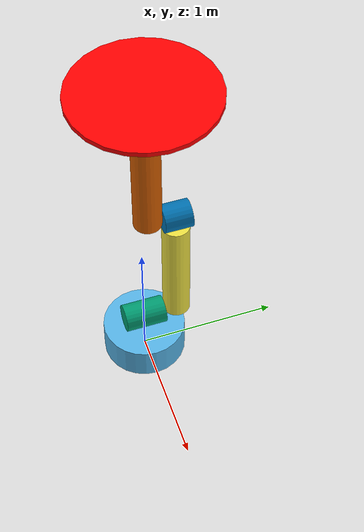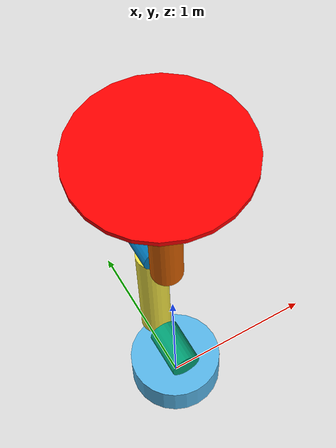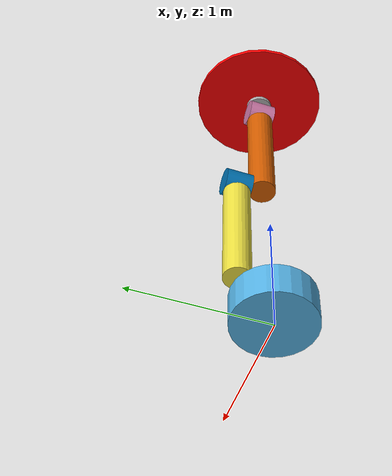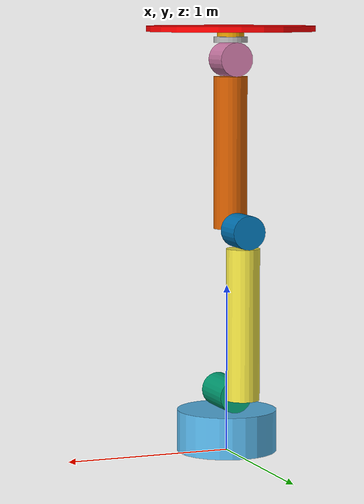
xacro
<?xml version="1.0"?>
<robot
    xmlns:xacro="http://www.ros.org/wiki/xacro" name="arm7dof">
    <xacro:property name="DH_d1" value="0.35" />
    <xacro:property name="DH_d2" value="0.25" />
    <xacro:property name="DH_d3" value="1" />
    <xacro:property name="DH_d4" value="-0.2" />
    <xacro:property name="DH_d5" value="1" />
    <xacro:property name="DH_d6" value="0.0" />
    <xacro:property name="DH_d7" value="0.2" />
    <xacro:property name="r_link" value="0.1" />
    <xacro:property name="r_base" value="0.3" />
    <xacro:property name="r_endplate" value="0.5" />
    <xacro:property name="L1" value="${DH_d1-r_link}" />
    <xacro:property name="L2" value="${2*(DH_d2-r_link)}" />
    <xacro:property name="L3" value="${DH_d3-r_link}" />
    <xacro:property name="L4" value="${2*(-DH_d4-r_link)}" />
    <xacro:property name="L5" value="${DH_d5-r_link}" />
    <xacro:property name="L6" value="${2*(r_link)}" />
    <xacro:property name="L7" value="${(DH_d7-r_link)}" />
    <!--distance from wrist point to final flange frame is L7; want to fit 3 disks in this range -->
    <xacro:property name="L_flange_disk" value="${L7/3}" />

  <link name="world"/>

  <joint name="fixed" type="fixed">
    <parent link="world"/>
    <child link="link1"/>
  </joint>

  <link name="link1">
    <visual>
      <origin xyz="0 0 ${L1/2}" rpy="0 0 0" />
      <geometry>
          <cylinder length="${L1}" radius="${r_base}"/>
      </geometry>
    </visual>
    <collision>
      <geometry>
        <cylinder length="${L1}" radius="${r_base}"/>
      </geometry>
      <origin rpy="0 0 0" xyz="0 0 ${L1/2}"/>
    </collision>
	<inertial>
	  <mass value="30.0"/>
	  <origin rpy="0 0 0" xyz="0 0 0"/>
	  <inertia ixx="5" iyy="5" izz="20" ixy="0.0" ixz="0.0" iyz="0.0"/>
	</inertial>
  </link>

  <joint name="joint0" type="revolute">
    <parent link="link1"/>
    <child link="link2"/>
    <origin xyz="0 0 ${DH_d1}" rpy="0 0 0" />
    <axis xyz="0 0 1" />
    <dynamics damping="10"/>
    <limit lower="-3" upper="3" effort="1300" velocity="0.2"/>
  </joint>

  <link name="link2">
    <visual>
      <origin xyz="0 0 0" rpy="1.57 0 0" />
      <geometry>
          <cylinder length="${L2}" radius="${r_link}"/>
      </geometry>
    </visual>
    <collision>
      <origin xyz="0 0 0" rpy="1.57 0 0" />
      <geometry>
          <cylinder length="${L2}" radius="${0.95*r_link}"/>
      </geometry>
    </collision>
	<inertial>
	  <mass value="20"/>
	  <origin rpy="1.57 0 0" xyz="0 0 0"/>
	  <inertia ixx="0.3" iyy="0.1" izz="10" ixy="0" ixz="0" iyz="0"/>
	</inertial>
  </link>

  <joint name="joint1" type="revolute">
    <parent link="link2"/>
    <child link="link3"/>
    <origin xyz="0 ${DH_d2} 0" rpy="1.57 0 0" />
    <axis xyz="0 0 1" />
    <dynamics damping="10"/>
    <limit lower="-3" upper="3" effort="1300" velocity="0.2"/>
  </joint>

  <link name="link3">
    <visual>
      <origin xyz="0 ${L3/2} 0.0" rpy="-1.57 0 0" />
      <geometry>
          <cylinder length="${L3}" radius="${r_link}"/>
      </geometry>
    </visual>
    <collision>
      <origin xyz="0 ${L3/2} 0.0" rpy="-1.57 0 0" />
      <geometry>
          <cylinder length="${L3}" radius="${r_link}"/>
      </geometry>
    </collision>
	<inertial>
	  <mass value="15"/>
	  <origin rpy="-1.57 0 0" xyz="0 0 0"/>
	  <inertia ixx="0.2" iyy="0.1" izz="10" ixy="0" ixz="0" iyz="0"/>
	</inertial>
  </link>

  <joint name="joint2" type="revolute">
    <parent link="link3"/>
    <child link="link4"/>
    <origin xyz="0 ${DH_d3} 0" rpy="-1.57 0 0" />
    <axis xyz="0 0 1" />
    <dynamics damping="5"/>
    <limit lower="-3.1" upper="2.8" effort="500" velocity="0.3"/>
  </joint>

  <link name="link4">
    <visual>
      <origin xyz="0 0 0" rpy="1.57 0 0" />
      <geometry>
          <cylinder length="${L4}" radius="${r_link}"/>
      </geometry>
    </visual>
    <collision>
      <origin xyz="0 0 0" rpy="1.57 0 0" />
      <geometry>
         <cylinder length="${L4}" radius="${0.95*r_link}"/>
      </geometry>
    </collision>
	<inertial>
	  <mass value="15"/>
	  <origin rpy="-1.57 0 0" xyz="0 0 0"/>
	  <inertia ixx="2" iyy="0.1" izz="10" ixy="0" ixz="0" iyz="0"/>
	</inertial>
  </link>

  <joint name="joint3" type="revolute">
    <parent link="link4"/>
    <child link="link5"/>
    <origin xyz="0 ${DH_d4} 0" rpy="1.57 0 0" />
    <axis xyz="0 0 1" />
    <dynamics damping="1000"/>
    <limit lower="-3.1" upper="2.7" effort="500" velocity="0.3"/>
  </joint>

  <link name="link5">
     <visual>
      <origin xyz="0 ${L5/2} 0.0" rpy="-1.57 0 0" />
      <geometry>
          <cylinder length="${L5}" radius="${r_link}"/>
      </geometry>
    </visual>
    <collision>
      <origin xyz="0 ${L5/2} 0.0" rpy="-1.57 0 0" />
      <geometry>
        <cylinder length="${L5}" radius="${r_link}"/>
      </geometry>
    </collision>
	<inertial>
	  <mass value="8"/>
	  <origin rpy="-1.57 0 0" xyz="0 0 0"/>
          <!-- iyy is rotation axis of link5 w/rt joint5-->
	  <inertia ixx="0.1" iyy="2" izz="3" ixy="0" ixz="0" iyz="0"/>
	</inertial>
  </link>

  <joint name="joint4" type="revolute">
    <parent link="link5"/>
    <child link="link6"/>
    <origin xyz="0 ${DH_d5} 0" rpy="-1.57 0 0" />
    <axis xyz="0 0 1" />
    <dynamics damping="30"/>
    <limit lower="-4." upper="1.5" effort="100" velocity="0.400"/>
  </joint>

  <link name="link6">
    <visual>
      <origin xyz="0 0.0 0" rpy="-1.57 0 0" />
      <geometry>
          <cylinder length="${L6}" radius="${r_link}"/>
      </geometry>
    </visual>
    <collision>
      <origin xyz="0 0.0 0" rpy="-1.57 0 0" />
      <geometry>
          <cylinder length="${L6}" radius="${0.95*r_link}"/>
      </geometry>
    </collision>
	<inertial>
	  <mass value="6"/>
	  <origin rpy="1.57 0 0" xyz="0 0 0"/>
          <!-- proximal joint induces rotation about iyy of link6, so increase this inertia to account for reflected motor inertia-->
	  <inertia ixx="1" iyy="1" izz="1" ixy="0" ixz="0" iyz="0"/>
	</inertial>
  </link>

  <joint name="joint5" type="revolute">
    <parent link="link6"/>
    <child link="link7"/>
    <origin xyz="0 0 0" rpy="1.57 0 0" />
    <axis xyz="0 0 1" />
    <dynamics damping="30"/>
    <limit lower="-3" upper="3" effort="100" velocity="0.5"/>
  </joint>

  <link name="link7">
     <visual>
      <origin xyz="0 ${DH_d7-2.5*L_flange_disk} 0" rpy="-1.57 0 0" />
      <geometry>
          <cylinder length="${L_flange_disk}" radius="${r_link}"/>
      </geometry>
    </visual>
	<inertial>
	  <mass value="4"/>
	  <origin rpy="-1.57 0 0" xyz="0 0 0"/>
	  <inertia ixx="0.03" iyy="1" izz="1" ixy="0" ixz="0" iyz="0"/>
	</inertial>
  </link>

  <joint name="joint6" type="revolute">
    <parent link="link7"/>
    <child link="link8"/>
    <origin xyz="0 ${DH_d7} 0" rpy="-1.57 0 0" />
    <axis xyz="0 0 1" />
    <dynamics damping="15"/>
    <limit lower="-4.5" upper="1.2" effort="70" velocity="0.4"/>
  </joint>

  <link name="link8">
    <visual>
      <origin xyz="0 0 ${-1.5*L_flange_disk}" rpy="0 0 0" />
      <geometry>
          <cylinder length="${L_flange_disk}" radius="${0.8*r_link}"/>
      </geometry>
    </visual>
    <!-- skip the collision model for this inner disk-->
	<inertial>
	  <mass value="4"/>
	  <origin rpy="0 0 0" xyz="0 0 0"/>
	  <!-- add more z inertia to help stabilize-->
	  <inertia ixx="0.03" iyy="0.03" izz="1" ixy="0" ixz="0" iyz="0"/>
	</inertial>
  </link>

  <transmission name="tran0">
	<type>transmission_interface/SimpleTransmission</type>
	<joint name="joint0">
	  <hardwareInterface>EffortJointInterface</hardwareInterface>
	</joint>
	<actuator name="motor0">
	  <hardwareInterface>EffortJointInterface</hardwareInterface>
	  <mechanicalReduction>7680</mechanicalReduction>
	</actuator>
  </transmission>

  <transmission name="tran1">
	<type>transmission_interface/SimpleTransmission</type>
	<joint name="joint1">
	  <hardwareInterface>EffortJointInterface</hardwareInterface>
	</joint>
	<actuator name="motor1">
	  <hardwareInterface>EffortJointInterface</hardwareInterface>
	  <mechanicalReduction>7680</mechanicalReduction>
	</actuator>
  </transmission>

  <transmission name="tran2">
	<type>transmission_interface/SimpleTransmission</type>
	<joint name="joint2">
	  <hardwareInterface>EffortJointInterface</hardwareInterface>
	</joint>
	<actuator name="motor2">
	  <hardwareInterface>EffortJointInterface</hardwareInterface>
	  <mechanicalReduction>3584</mechanicalReduction>
	</actuator>
  </transmission>

  <transmission name="tran3">
	<type>transmission_interface/SimpleTransmission</type>
	<joint name="joint3">
	  <hardwareInterface>EffortJointInterface</hardwareInterface>
	</joint>
	<actuator name="motor3">
	  <hardwareInterface>EffortJointInterface</hardwareInterface>
	  <mechanicalReduction>3584</mechanicalReduction>
	</actuator>
  </transmission>

  <transmission name="tran4">
	<type>transmission_interface/SimpleTransmission</type>
	<joint name="joint4">
	  <hardwareInterface>EffortJointInterface</hardwareInterface>
	</joint>
	<actuator name="motor4">
	  <hardwareInterface>EffortJointInterface</hardwareInterface>
	  <mechanicalReduction>3125</mechanicalReduction>
	</actuator>
  </transmission>

  <transmission name="tran5">
	<type>transmission_interface/SimpleTransmission</type>
	<joint name="joint5">
	  <hardwareInterface>EffortJointInterface</hardwareInterface>
	</joint>
	<actuator name="motor5">
	  <hardwareInterface>EffortJointInterface</hardwareInterface>
	  <mechanicalReduction>3125</mechanicalReduction>
	</actuator>
  </transmission>

  <transmission name="tran6">
	<type>transmission_interface/SimpleTransmission</type>
	<joint name="joint6">
	  <hardwareInterface>EffortJointInterface</hardwareInterface>
	</joint>
	<actuator name="motor6">
	  <hardwareInterface>EffortJointInterface</hardwareInterface>
	  <mechanicalReduction>3125</mechanicalReduction>
	</actuator>
  </transmission>

  <!--this is silly, but need to include transmission spec in order to get ft_sensor link frame published-->
  <transmission name="tran7">
	<type>transmission_interface/SimpleTransmission</type>
	<joint name="ft_sensor_jnt">
	  <hardwareInterface>EffortJointInterface</hardwareInterface>
	</joint>
	<actuator name="motor7">
	  <hardwareInterface>EffortJointInterface</hardwareInterface>
	  <mechanicalReduction>1</mechanicalReduction>
	</actuator>
  </transmission>

    <gazebo>
     <plugin name="gazebo_ros_control" filename="libgazebo_ros_control.so">
       <robotNamespace>/arm7dof</robotNamespace>
     </plugin>
  </gazebo>

  <!--model a f/t sensor; set up a link and a joint -->
  <link name="ft_sensor_link">
      <collision>
          <origin xyz="0 0 ${-L_flange_disk/2}" rpy="0 0 0"/>
          <geometry>
            <cylinder length="${L_flange_disk}" radius="${r_endplate}"/>
          </geometry>
      </collision>

      <visual>
          <origin xyz="0 0 ${-L_flange_disk/2}" rpy="0 0 0" />
          <geometry>
              <cylinder length="${L_flange_disk}" radius="${r_endplate}"/>
          </geometry>
          <material name="ft_sensor_color">
              <color rgba="1 0 0 1.0"/>
          </material>
      </visual>

      <inertial>
          <mass value="0.01" />
          <origin xyz="0 0 0" rpy="0 0 0"/>
          <inertia ixx="0.01" ixy="0" ixz="0" iyy="0.01" iyz="0" izz="0.01" />
      </inertial>
  </link>

  <!--ideally, this would be a static joint; until fixed in gazebo, must have dynamic jnt-->
  <joint name="ft_sensor_jnt" type="prismatic">
    <parent link="link8"/>
    <child link="ft_sensor_link"/>
    <origin xyz="0 0 -0.003" rpy="0 0 0"/>
    <axis xyz="0 0 1"/>
    <limit effort="100.0" lower="0" upper="0.0" velocity="0.01"/>
    <dynamics damping="1.0"/>
  </joint>

    <!-- Enable Joint Feedback -->
    <gazebo reference="ft_sensor_jnt">
        <provideFeedback>true</provideFeedback>
    </gazebo>
    <!-- The ft_sensor plugin -->
    <gazebo>
        <plugin name="ft_sensor" filename="libgazebo_ros_ft_sensor.so">
            <updateRate>1000.0</updateRate>
            <topicName>ft_sensor_topic</topicName>
            <jointName>ft_sensor_jnt</jointName>
        </plugin>
    </gazebo>
</robot>
